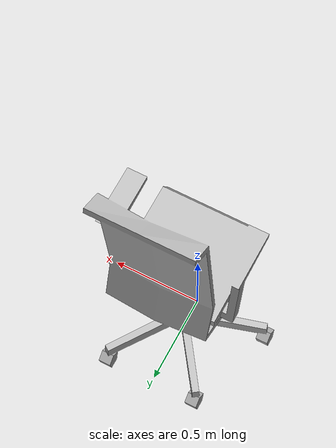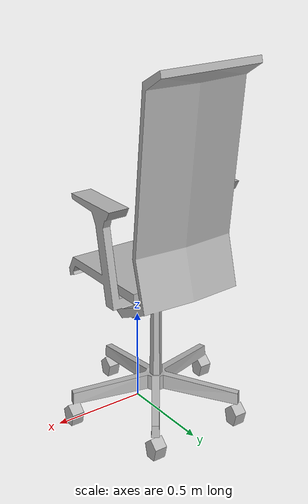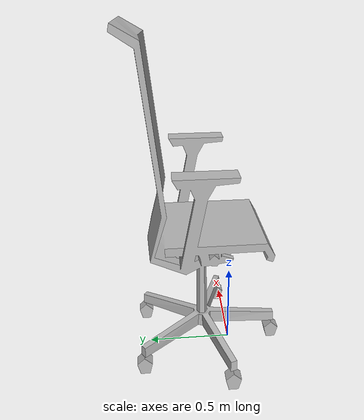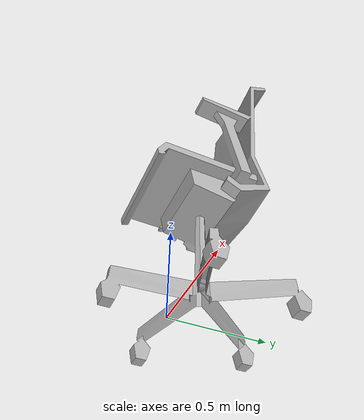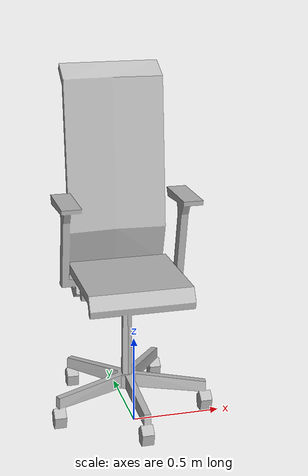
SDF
<?xml version='1.0' encoding='utf-8'?>
<sdf version="1.6">
  <model name="OfficeChairGrey">
    <static>true</static>
    <link name="body">
      <pose>0 0 0 0 0 0</pose>

      <visual name="visual">
        <geometry>
          <mesh>
            <uri>model://OfficeChairGrey/meshes/OfficeChairGrey.obj</uri>
            <scale>1.3 1.3 1.7</scale> <!-- 缩放比例 -->
          </mesh>
        </geometry>
      </visual>

      <collision name="collision">
        <geometry>
          <mesh>
            <uri>model://OfficeChairGrey/meshes/OfficeChairGrey_Col.obj</uri>
            <scale>1.3 1.3 1.7</scale> <!-- 缩放比例 -->
          </mesh>
        </geometry>
      </collision>
    </link>
  </model>
</sdf>
